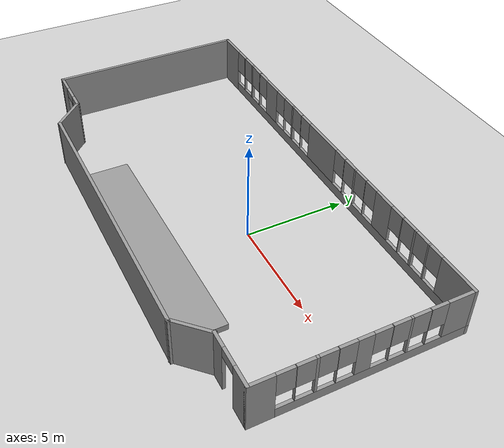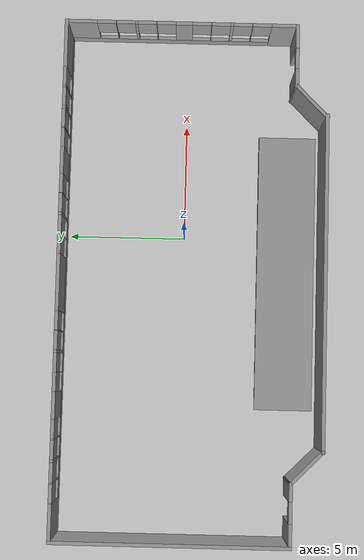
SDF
<sdf version="1.6">
 <world name="default">
  <model name="ground_plane">
   <static>1</static>
   <link name="link">
    <collision name="collision">
     <geometry><plane><normal>0 0 1</normal><size>100 100</size></plane></geometry>
     <surface><friction><ode><mu>100</mu><mu2>50</mu2></ode></friction></surface>
    </collision>
    <visual name="visual">
     <cast_shadows>0</cast_shadows>
     <geometry><plane><normal>0 0 1</normal><size>100 100</size></plane></geometry>
     <material>
      <script><uri>file://media/materials/scripts/gazebo.material</uri><name>Gazebo/Grey</name></script>
     </material>
    </visual>
   </link>
  </model>
  <model name="roomA">
   <pose>-1.9721 -0.37172 0 0 -0 0</pose>
   <link name="Wall_12">
    <pose>-9.625 -4.25539 0 0 -0 0</pose>
    <visual name="Wall_12_Visual_0">
     <pose>-0.851179 0 1.25 0 -0 0</pose>
     <geometry><box><size>1.04764 0.15 2.5</size></box></geometry>
     <material>
      <script><uri>file://media/materials/scripts/gazebo.material</uri><name>Gazebo/Grey</name></script>
      <ambient>1 1 1 1</ambient>
     </material>
     <meta><layer>0</layer></meta>
    </visual>
    <collision name="Wall_12_Collision_0">
     <geometry><box><size>1.04764 0.15 2.5</size></box></geometry>
     <pose>-0.851179 0 1.25 0 -0 0</pose>
    </collision>
    <visual name="Wall_12_Visual_1">
     <pose>0.973821 0 1.25 0 -0 0</pose>
     <geometry><box><size>0.802358 0.15 2.5</size></box></geometry>
     <material>
      <script><uri>file://media/materials/scripts/gazebo.material</uri><name>Gazebo/Grey</name></script>
      <ambient>1 1 1 1</ambient>
     </material>
     <meta><layer>0</layer></meta>
    </visual>
    <collision name="Wall_12_Collision_1">
     <geometry><box><size>0.802358 0.15 2.5</size></box></geometry>
     <pose>0.973821 0 1.25 0 -0 0</pose>
    </collision>
    <visual name="Wall_12_Visual_2">
     <pose>0.122642 0 2.25 0 -0 0</pose>
     <geometry><box><size>0.9 0.15 0.5</size></box></geometry>
     <material>
      <script><uri>file://media/materials/scripts/gazebo.material</uri><name>Gazebo/Grey</name></script>
      <ambient>1 1 1 1</ambient>
     </material>
     <meta><layer>0</layer></meta>
    </visual>
    <collision name="Wall_12_Collision_2">
     <geometry><box><size>0.9 0.15 0.5</size></box></geometry>
     <pose>0.122642 0 2.25 0 -0 0</pose>
    </collision>
   </link>
   <link name="Wall_13">
    <collision name="Wall_13_Collision">
     <geometry><box><size>2 0.15 2.5</size></box></geometry>
     <pose>0 0 1.25 0 -0 0</pose>
    </collision>
    <visual name="Wall_13_Visual">
     <pose>0 0 1.25 0 -0 0</pose>
     <geometry><box><size>2 0.15 2.5</size></box></geometry>
     <material>
      <script><uri>file://media/materials/scripts/gazebo.material</uri><name>Gazebo/Grey</name></script>
      <ambient>1 1 1 1</ambient>
     </material>
     <meta><layer>0</layer></meta>
    </visual>
    <pose>-7.67093 -4.90947 0 0 -0 -0.785398</pose>
   </link>
   <link name="Wall_14">
    <collision name="Wall_14_Collision">
     <geometry><box><size>14.25 0.15 2.5</size></box></geometry>
     <pose>0 0 1.25 0 -0 0</pose>
    </collision>
    <visual name="Wall_14_Visual">
     <pose>0 0 1.25 0 -0 0</pose>
     <geometry><box><size>14.25 0.15 2.5</size></box></geometry>
     <material>
      <script><uri>file://media/materials/scripts/gazebo.material</uri><name>Gazebo/Grey</name></script>
      <ambient>1 1 1 1</ambient>
     </material>
     <meta><layer>0</layer></meta>
    </visual>
    <pose>0.033147 -5.56354 0 0 -0 0</pose>
   </link>
   <link name="Wall_16">
    <pose>9.625 -4.25539 0 0 -0 3.14159</pose>
    <visual name="Wall_16_Visual_0">
     <pose>-0.86254 0 1.25 0 -0 0</pose>
     <geometry><box><size>1.02492 0.15 2.5</size></box></geometry>
     <material>
      <script><uri>file://media/materials/scripts/gazebo.material</uri><name>Gazebo/Grey</name></script>
      <ambient>1 1 1 1</ambient>
     </material>
     <meta><layer>0</layer></meta>
    </visual>
    <collision name="Wall_16_Collision_0">
     <geometry><box><size>1.02492 0.15 2.5</size></box></geometry>
     <pose>-0.86254 0 1.25 0 -0 0</pose>
    </collision>
    <visual name="Wall_16_Visual_1">
     <pose>0.96246 0 1.25 0 -0 0</pose>
     <geometry><box><size>0.825081 0.15 2.5</size></box></geometry>
     <material>
      <script><uri>file://media/materials/scripts/gazebo.material</uri><name>Gazebo/Grey</name></script>
      <ambient>1 1 1 1</ambient>
     </material>
     <meta><layer>0</layer></meta>
    </visual>
    <collision name="Wall_16_Collision_1">
     <geometry><box><size>0.825081 0.15 2.5</size></box></geometry>
     <pose>0.96246 0 1.25 0 -0 0</pose>
    </collision>
    <visual name="Wall_16_Visual_2">
     <pose>0.099919 0 2.25 0 -0 0</pose>
     <geometry><box><size>0.9 0.15 0.5</size></box></geometry>
     <material>
      <script><uri>file://media/materials/scripts/gazebo.material</uri><name>Gazebo/Grey</name></script>
      <ambient>1 1 1 1</ambient>
     </material>
     <meta><layer>0</layer></meta>
    </visual>
    <collision name="Wall_16_Collision_2">
     <geometry><box><size>0.9 0.15 0.5</size></box></geometry>
     <pose>0.099919 0 2.25 0 -0 0</pose>
    </collision>
   </link>
   <link name="Wall_17">
    <collision name="Wall_17_Collision">
     <geometry><box><size>2 0.15 2.5</size></box></geometry>
     <pose>0 0 1.25 0 -0 0</pose>
    </collision>
    <visual name="Wall_17_Visual">
     <pose>0 0 1.25 0 -0 0</pose>
     <geometry><box><size>2 0.15 2.5</size></box></geometry>
     <material>
      <script><uri>file://media/materials/scripts/gazebo.material</uri><name>Gazebo/Grey</name></script>
      <ambient>1 1 1 1</ambient>
     </material>
     <meta><layer>0</layer></meta>
    </visual>
    <pose>7.67093 -4.90947 0 0 -0 -2.35619</pose>
   </link>
   <link name="Wall_4">
    <collision name="Wall_4_Collision">
     <geometry><box><size>10 0.15 2.5</size></box></geometry>
     <pose>0 0 1.25 0 -0 0</pose>
    </collision>
    <visual name="Wall_4_Visual">
     <pose>0 0 1.25 0 -0 0</pose>
     <geometry><box><size>10 0.15 2.5</size></box></geometry>
     <material>
      <script><uri>file://media/materials/scripts/gazebo.material</uri><name>Gazebo/Grey</name></script>
      <ambient>1 1 1 1</ambient>
     </material>
     <meta><layer>0</layer></meta>
    </visual>
    <pose>-10.925 0.669607 0 0 -0 -1.5708</pose>
   </link>
   <link name="Wall_6">
    <pose>10.925 0.669607 0 0 -0 1.5708</pose>
    <visual name="Wall_6_Visual_0">
     <pose>-4.40575 0 1.25 0 -0 0</pose>
     <geometry><box><size>1.1885 0.15 2.5</size></box></geometry>
     <material>
      <script><uri>file://media/materials/scripts/gazebo.material</uri><name>Gazebo/Grey</name></script>
      <ambient>1 1 1 1</ambient>
     </material>
     <meta><layer>0</layer></meta>
    </visual>
    <collision name="Wall_6_Collision_0">
     <geometry><box><size>1.1885 0.15 2.5</size></box></geometry>
     <pose>-4.40575 0 1.25 0 -0 0</pose>
    </collision>
    <visual name="Wall_6_Visual_1">
     <pose>0.594248 0 0.25 0 -0 0</pose>
     <geometry><box><size>8.8115 0.15 0.5</size></box></geometry>
     <material>
      <script><uri>file://media/materials/scripts/gazebo.material</uri><name>Gazebo/Grey</name></script>
      <ambient>1 1 1 1</ambient>
     </material>
     <meta><layer>0</layer></meta>
    </visual>
    <collision name="Wall_6_Collision_1">
     <geometry><box><size>8.8115 0.15 0.5</size></box></geometry>
     <pose>0.594248 0 0.25 0 -0 0</pose>
    </collision>
    <visual name="Wall_6_Visual_2">
     <pose>-2.99918 0 1.5 0 -0 0</pose>
     <geometry><box><size>0.024656 0.15 2</size></box></geometry>
     <material>
      <script><uri>file://media/materials/scripts/gazebo.material</uri><name>Gazebo/Grey</name></script>
      <ambient>1 1 1 1</ambient>
     </material>
     <meta><layer>0</layer></meta>
    </visual>
    <collision name="Wall_6_Collision_2">
     <geometry><box><size>0.024656 0.15 2</size></box></geometry>
     <pose>-2.99918 0 1.5 0 -0 0</pose>
    </collision>
    <visual name="Wall_6_Visual_3">
     <pose>-2.12424 0 1.5 0 -0 0</pose>
     <geometry><box><size>0.125224 0.15 2</size></box></geometry>
     <material>
      <script><uri>file://media/materials/scripts/gazebo.material</uri><name>Gazebo/Grey</name></script>
      <ambient>1 1 1 1</ambient>
     </material>
     <meta><layer>0</layer></meta>
    </visual>
    <collision name="Wall_6_Collision_3">
     <geometry><box><size>0.125224 0.15 2</size></box></geometry>
     <pose>-2.12424 0 1.5 0 -0 0</pose>
    </collision>
    <visual name="Wall_6_Visual_4">
     <pose>-1.2493 0 1.5 0 -0 0</pose>
     <geometry><box><size>0.024656 0.15 2</size></box></geometry>
     <material>
      <script><uri>file://media/materials/scripts/gazebo.material</uri><name>Gazebo/Grey</name></script>
      <ambient>1 1 1 1</ambient>
     </material>
     <meta><layer>0</layer></meta>
    </visual>
    <collision name="Wall_6_Collision_4">
     <geometry><box><size>0.024656 0.15 2</size></box></geometry>
     <pose>-1.2493 0 1.5 0 -0 0</pose>
    </collision>
    <visual name="Wall_6_Visual_5">
     <pose>-0.082708 0 1.5 0 -0 0</pose>
     <geometry><box><size>0.708518 0.15 2</size></box></geometry>
     <material>
      <script><uri>file://media/materials/scripts/gazebo.material</uri><name>Gazebo/Grey</name></script>
      <ambient>1 1 1 1</ambient>
     </material>
     <meta><layer>0</layer></meta>
    </visual>
    <collision name="Wall_6_Collision_5">
     <geometry><box><size>0.708518 0.15 2</size></box></geometry>
     <pose>-0.082708 0 1.5 0 -0 0</pose>
    </collision>
    <visual name="Wall_6_Visual_6">
     <pose>1.08388 0 1.5 0 -0 0</pose>
     <geometry><box><size>0.024656 0.15 2</size></box></geometry>
     <material>
      <script><uri>file://media/materials/scripts/gazebo.material</uri><name>Gazebo/Grey</name></script>
      <ambient>1 1 1 1</ambient>
     </material>
     <meta><layer>0</layer></meta>
    </visual>
    <collision name="Wall_6_Collision_6">
     <geometry><box><size>0.024656 0.15 2</size></box></geometry>
     <pose>1.08388 0 1.5 0 -0 0</pose>
    </collision>
    <visual name="Wall_6_Visual_7">
     <pose>1.94876 0 1.5 0 -0 0</pose>
     <geometry><box><size>0.105111 0.15 2</size></box></geometry>
     <material>
      <script><uri>file://media/materials/scripts/gazebo.material</uri><name>Gazebo/Grey</name></script>
      <ambient>1 1 1 1</ambient>
     </material>
     <meta><layer>0</layer></meta>
    </visual>
    <collision name="Wall_6_Collision_7">
     <geometry><box><size>0.105111 0.15 2</size></box></geometry>
     <pose>1.94876 0 1.5 0 -0 0</pose>
    </collision>
    <visual name="Wall_6_Visual_8">
     <pose>2.81365 0 1.5 0 -0 0</pose>
     <geometry><box><size>0.024656 0.15 2</size></box></geometry>
     <material>
      <script><uri>file://media/materials/scripts/gazebo.material</uri><name>Gazebo/Grey</name></script>
      <ambient>1 1 1 1</ambient>
     </material>
     <meta><layer>0</layer></meta>
    </visual>
    <collision name="Wall_6_Collision_8">
     <geometry><box><size>0.024656 0.15 2</size></box></geometry>
     <pose>2.81365 0 1.5 0 -0 0</pose>
    </collision>
    <visual name="Wall_6_Visual_9">
     <pose>4.31299 0 1.5 0 -0 0</pose>
     <geometry><box><size>1.37403 0.15 2</size></box></geometry>
     <material>
      <script><uri>file://media/materials/scripts/gazebo.material</uri><name>Gazebo/Grey</name></script>
      <ambient>1 1 1 1</ambient>
     </material>
     <meta><layer>0</layer></meta>
    </visual>
    <collision name="Wall_6_Collision_9">
     <geometry><box><size>1.37403 0.15 2</size></box></geometry>
     <pose>4.31299 0 1.5 0 -0 0</pose>
    </collision>
    <visual name="Wall_6_Visual_10">
     <pose>-3.4115 0 1.9 0 -0 0</pose>
     <geometry><box><size>0.8 0.15 1.2</size></box></geometry>
     <material>
      <script><uri>file://media/materials/scripts/gazebo.material</uri><name>Gazebo/Grey</name></script>
      <ambient>1 1 1 1</ambient>
     </material>
     <meta><layer>0</layer></meta>
    </visual>
    <collision name="Wall_6_Collision_10">
     <geometry><box><size>0.8 0.15 1.2</size></box></geometry>
     <pose>-3.4115 0 1.9 0 -0 0</pose>
    </collision>
    <visual name="Wall_6_Visual_11">
     <pose>-2.58685 0 1.9 0 -0 0</pose>
     <geometry><box><size>0.8 0.15 1.2</size></box></geometry>
     <material>
      <script><uri>file://media/materials/scripts/gazebo.material</uri><name>Gazebo/Grey</name></script>
      <ambient>1 1 1 1</ambient>
     </material>
     <meta><layer>0</layer></meta>
    </visual>
    <collision name="Wall_6_Collision_11">
     <geometry><box><size>0.8 0.15 1.2</size></box></geometry>
     <pose>-2.58685 0 1.9 0 -0 0</pose>
    </collision>
    <visual name="Wall_6_Visual_12">
     <pose>-1.66162 0 1.9 0 -0 0</pose>
     <geometry><box><size>0.8 0.15 1.2</size></box></geometry>
     <material>
      <script><uri>file://media/materials/scripts/gazebo.material</uri><name>Gazebo/Grey</name></script>
      <ambient>1 1 1 1</ambient>
     </material>
     <meta><layer>0</layer></meta>
    </visual>
    <collision name="Wall_6_Collision_12">
     <geometry><box><size>0.8 0.15 1.2</size></box></geometry>
     <pose>-1.66162 0 1.9 0 -0 0</pose>
    </collision>
    <visual name="Wall_6_Visual_13">
     <pose>-0.836967 0 1.9 0 -0 0</pose>
     <geometry><box><size>0.8 0.15 1.2</size></box></geometry>
     <material>
      <script><uri>file://media/materials/scripts/gazebo.material</uri><name>Gazebo/Grey</name></script>
      <ambient>1 1 1 1</ambient>
     </material>
     <meta><layer>0</layer></meta>
    </visual>
    <collision name="Wall_6_Collision_13">
     <geometry><box><size>0.8 0.15 1.2</size></box></geometry>
     <pose>-0.836967 0 1.9 0 -0 0</pose>
    </collision>
    <visual name="Wall_6_Visual_14">
     <pose>0.671551 0 1.9 0 -0 0</pose>
     <geometry><box><size>0.8 0.15 1.2</size></box></geometry>
     <material>
      <script><uri>file://media/materials/scripts/gazebo.material</uri><name>Gazebo/Grey</name></script>
      <ambient>1 1 1 1</ambient>
     </material>
     <meta><layer>0</layer></meta>
    </visual>
    <collision name="Wall_6_Collision_14">
     <geometry><box><size>0.8 0.15 1.2</size></box></geometry>
     <pose>0.671551 0 1.9 0 -0 0</pose>
    </collision>
    <visual name="Wall_6_Visual_15">
     <pose>1.49621 0 1.9 0 -0 0</pose>
     <geometry><box><size>0.8 0.15 1.2</size></box></geometry>
     <material>
      <script><uri>file://media/materials/scripts/gazebo.material</uri><name>Gazebo/Grey</name></script>
      <ambient>1 1 1 1</ambient>
     </material>
     <meta><layer>0</layer></meta>
    </visual>
    <collision name="Wall_6_Collision_15">
     <geometry><box><size>0.8 0.15 1.2</size></box></geometry>
     <pose>1.49621 0 1.9 0 -0 0</pose>
    </collision>
    <visual name="Wall_6_Visual_16">
     <pose>2.40132 0 1.9 0 -0 0</pose>
     <geometry><box><size>0.8 0.15 1.2</size></box></geometry>
     <material>
      <script><uri>file://media/materials/scripts/gazebo.material</uri><name>Gazebo/Grey</name></script>
      <ambient>1 1 1 1</ambient>
     </material>
     <meta><layer>0</layer></meta>
    </visual>
    <collision name="Wall_6_Collision_16">
     <geometry><box><size>0.8 0.15 1.2</size></box></geometry>
     <pose>2.40132 0 1.9 0 -0 0</pose>
    </collision>
    <visual name="Wall_6_Visual_17">
     <pose>3.22598 0 1.9 0 -0 0</pose>
     <geometry><box><size>0.8 0.15 1.2</size></box></geometry>
     <material>
      <script><uri>file://media/materials/scripts/gazebo.material</uri><name>Gazebo/Grey</name></script>
      <ambient>1 1 1 1</ambient>
     </material>
     <meta><layer>0</layer></meta>
    </visual>
    <collision name="Wall_6_Collision_17">
     <geometry><box><size>0.8 0.15 1.2</size></box></geometry>
     <pose>3.22598 0 1.9 0 -0 0</pose>
    </collision>
   </link>
   <link name="Wall_8">
    <pose>-0 5.59461 0 0 -0 0</pose>
    <visual name="Wall_8_Visual_0">
     <pose>-10.1796 0 1.25 0 -0 0</pose>
     <geometry><box><size>1.64071 0.15 2.5</size></box></geometry>
     <material>
      <script><uri>file://media/materials/scripts/gazebo.material</uri><name>Gazebo/Grey</name></script>
      <ambient>1 1 1 1</ambient>
     </material>
     <meta><layer>0</layer></meta>
    </visual>
    <collision name="Wall_8_Collision_0">
     <geometry><box><size>1.64071 0.15 2.5</size></box></geometry>
     <pose>-10.1796 0 1.25 0 -0 0</pose>
    </collision>
    <visual name="Wall_8_Visual_1">
     <pose>0.820354 0 0.25 0 -0 0</pose>
     <geometry><box><size>20.3593 0.15 0.5</size></box></geometry>
     <material>
      <script><uri>file://media/materials/scripts/gazebo.material</uri><name>Gazebo/Grey</name></script>
      <ambient>1 1 1 1</ambient>
     </material>
     <meta><layer>0</layer></meta>
    </visual>
    <collision name="Wall_8_Collision_1">
     <geometry><box><size>20.3593 0.15 0.5</size></box></geometry>
     <pose>0.820354 0 0.25 0 -0 0</pose>
    </collision>
    <visual name="Wall_8_Visual_2">
     <pose>-8.52685 0 1.5 0 -0 0</pose>
     <geometry><box><size>0.064883 0.15 2</size></box></geometry>
     <material>
      <script><uri>file://media/materials/scripts/gazebo.material</uri><name>Gazebo/Grey</name></script>
      <ambient>1 1 1 1</ambient>
     </material>
     <meta><layer>0</layer></meta>
    </visual>
    <collision name="Wall_8_Collision_2">
     <geometry><box><size>0.064883 0.15 2</size></box></geometry>
     <pose>-8.52685 0 1.5 0 -0 0</pose>
    </collision>
    <visual name="Wall_8_Visual_3">
     <pose>-7.6318 0 1.5 0 -0 0</pose>
     <geometry><box><size>0.125224 0.15 2</size></box></geometry>
     <material>
      <script><uri>file://media/materials/scripts/gazebo.material</uri><name>Gazebo/Grey</name></script>
      <ambient>1 1 1 1</ambient>
     </material>
     <meta><layer>0</layer></meta>
    </visual>
    <collision name="Wall_8_Collision_3">
     <geometry><box><size>0.125224 0.15 2</size></box></geometry>
     <pose>-7.6318 0 1.5 0 -0 0</pose>
    </collision>
    <visual name="Wall_8_Visual_4">
     <pose>-6.7468 0 1.5 0 -0 0</pose>
     <geometry><box><size>0.04477 0.15 2</size></box></geometry>
     <material>
      <script><uri>file://media/materials/scripts/gazebo.material</uri><name>Gazebo/Grey</name></script>
      <ambient>1 1 1 1</ambient>
     </material>
     <meta><layer>0</layer></meta>
    </visual>
    <collision name="Wall_8_Collision_4">
     <geometry><box><size>0.04477 0.15 2</size></box></geometry>
     <pose>-6.7468 0 1.5 0 -0 0</pose>
    </collision>
    <visual name="Wall_8_Visual_5">
     <pose>-5.35896 0 1.5 0 -0 0</pose>
     <geometry><box><size>1.1309 0.15 2</size></box></geometry>
     <material>
      <script><uri>file://media/materials/scripts/gazebo.material</uri><name>Gazebo/Grey</name></script>
      <ambient>1 1 1 1</ambient>
     </material>
     <meta><layer>0</layer></meta>
    </visual>
    <collision name="Wall_8_Collision_5">
     <geometry><box><size>1.1309 0.15 2</size></box></geometry>
     <pose>-5.35896 0 1.5 0 -0 0</pose>
    </collision>
    <visual name="Wall_8_Visual_6">
     <pose>-3.99124 0 1.5 0 -0 0</pose>
     <geometry><box><size>0.004543 0.15 2</size></box></geometry>
     <material>
      <script><uri>file://media/materials/scripts/gazebo.material</uri><name>Gazebo/Grey</name></script>
      <ambient>1 1 1 1</ambient>
     </material>
     <meta><layer>0</layer></meta>
    </visual>
    <collision name="Wall_8_Collision_6">
     <geometry><box><size>0.004543 0.15 2</size></box></geometry>
     <pose>-3.99124 0 1.5 0 -0 0</pose>
    </collision>
    <visual name="Wall_8_Visual_7">
     <pose>-3.12636 0 1.5 0 -0 0</pose>
     <geometry><box><size>0.125224 0.15 2</size></box></geometry>
     <material>
      <script><uri>file://media/materials/scripts/gazebo.material</uri><name>Gazebo/Grey</name></script>
      <ambient>1 1 1 1</ambient>
     </material>
     <meta><layer>0</layer></meta>
    </visual>
    <collision name="Wall_8_Collision_7">
     <geometry><box><size>0.125224 0.15 2</size></box></geometry>
     <pose>-3.12636 0 1.5 0 -0 0</pose>
    </collision>
    <visual name="Wall_8_Visual_8">
     <pose>-2.25142 0 1.5 0 -0 0</pose>
     <geometry><box><size>0.024656 0.15 2</size></box></geometry>
     <material>
      <script><uri>file://media/materials/scripts/gazebo.material</uri><name>Gazebo/Grey</name></script>
      <ambient>1 1 1 1</ambient>
     </material>
     <meta><layer>0</layer></meta>
    </visual>
    <collision name="Wall_8_Collision_8">
     <geometry><box><size>0.024656 0.15 2</size></box></geometry>
     <pose>-2.25142 0 1.5 0 -0 0</pose>
    </collision>
    <visual name="Wall_8_Visual_9">
     <pose>-0.240058 0 1.5 0 -0 0</pose>
     <geometry><box><size>2.39806 0.15 2</size></box></geometry>
     <material>
      <script><uri>file://media/materials/scripts/gazebo.material</uri><name>Gazebo/Grey</name></script>
      <ambient>1 1 1 1</ambient>
     </material>
     <meta><layer>0</layer></meta>
    </visual>
    <collision name="Wall_8_Collision_9">
     <geometry><box><size>2.39806 0.15 2</size></box></geometry>
     <pose>-0.240058 0 1.5 0 -0 0</pose>
    </collision>
    <visual name="Wall_8_Visual_10">
     <pose>1.7713 0 1.5 0 -0 0</pose>
     <geometry><box><size>0.024656 0.15 2</size></box></geometry>
     <material>
      <script><uri>file://media/materials/scripts/gazebo.material</uri><name>Gazebo/Grey</name></script>
      <ambient>1 1 1 1</ambient>
     </material>
     <meta><layer>0</layer></meta>
    </visual>
    <collision name="Wall_8_Collision_10">
     <geometry><box><size>0.024656 0.15 2</size></box></geometry>
     <pose>1.7713 0 1.5 0 -0 0</pose>
    </collision>
    <visual name="Wall_8_Visual_11">
     <pose>2.64624 0 1.5 0 -0 0</pose>
     <geometry><box><size>0.125224 0.15 2</size></box></geometry>
     <material>
      <script><uri>file://media/materials/scripts/gazebo.material</uri><name>Gazebo/Grey</name></script>
      <ambient>1 1 1 1</ambient>
     </material>
     <meta><layer>0</layer></meta>
    </visual>
    <collision name="Wall_8_Collision_11">
     <geometry><box><size>0.125224 0.15 2</size></box></geometry>
     <pose>2.64624 0 1.5 0 -0 0</pose>
    </collision>
    <visual name="Wall_8_Visual_12">
     <pose>3.52118 0 1.5 0 -0 0</pose>
     <geometry><box><size>0.024656 0.15 2</size></box></geometry>
     <material>
      <script><uri>file://media/materials/scripts/gazebo.material</uri><name>Gazebo/Grey</name></script>
      <ambient>1 1 1 1</ambient>
     </material>
     <meta><layer>0</layer></meta>
    </visual>
    <collision name="Wall_8_Collision_12">
     <geometry><box><size>0.024656 0.15 2</size></box></geometry>
     <pose>3.52118 0 1.5 0 -0 0</pose>
    </collision>
    <visual name="Wall_8_Visual_13">
     <pose>4.90902 0 1.5 0 -0 0</pose>
     <geometry><box><size>1.15102 0.15 2</size></box></geometry>
     <material>
      <script><uri>file://media/materials/scripts/gazebo.material</uri><name>Gazebo/Grey</name></script>
      <ambient>1 1 1 1</ambient>
     </material>
     <meta><layer>0</layer></meta>
    </visual>
    <collision name="Wall_8_Collision_13">
     <geometry><box><size>1.15102 0.15 2</size></box></geometry>
     <pose>4.90902 0 1.5 0 -0 0</pose>
    </collision>
    <visual name="Wall_8_Visual_14">
     <pose>6.30691 0 1.5 0 -0 0</pose>
     <geometry><box><size>0.04477 0.15 2</size></box></geometry>
     <material>
      <script><uri>file://media/materials/scripts/gazebo.material</uri><name>Gazebo/Grey</name></script>
      <ambient>1 1 1 1</ambient>
     </material>
     <meta><layer>0</layer></meta>
    </visual>
    <collision name="Wall_8_Collision_14">
     <geometry><box><size>0.04477 0.15 2</size></box></geometry>
     <pose>6.30691 0 1.5 0 -0 0</pose>
    </collision>
    <visual name="Wall_8_Visual_15">
     <pose>7.19191 0 1.5 0 -0 0</pose>
     <geometry><box><size>0.125224 0.15 2</size></box></geometry>
     <material>
      <script><uri>file://media/materials/scripts/gazebo.material</uri><name>Gazebo/Grey</name></script>
      <ambient>1 1 1 1</ambient>
     </material>
     <meta><layer>0</layer></meta>
    </visual>
    <collision name="Wall_8_Collision_15">
     <geometry><box><size>0.125224 0.15 2</size></box></geometry>
     <pose>7.19191 0 1.5 0 -0 0</pose>
    </collision>
    <visual name="Wall_8_Visual_16">
     <pose>8.09702 0 1.5 0 -0 0</pose>
     <geometry><box><size>0.084997 0.15 2</size></box></geometry>
     <material>
      <script><uri>file://media/materials/scripts/gazebo.material</uri><name>Gazebo/Grey</name></script>
      <ambient>1 1 1 1</ambient>
     </material>
     <meta><layer>0</layer></meta>
    </visual>
    <collision name="Wall_8_Collision_16">
     <geometry><box><size>0.084997 0.15 2</size></box></geometry>
     <pose>8.09702 0 1.5 0 -0 0</pose>
    </collision>
    <visual name="Wall_8_Visual_17">
     <pose>9.96976 0 1.5 0 -0 0</pose>
     <geometry><box><size>2.06048 0.15 2</size></box></geometry>
     <material>
      <script><uri>file://media/materials/scripts/gazebo.material</uri><name>Gazebo/Grey</name></script>
      <ambient>1 1 1 1</ambient>
     </material>
     <meta><layer>0</layer></meta>
    </visual>
    <collision name="Wall_8_Collision_17">
     <geometry><box><size>2.06048 0.15 2</size></box></geometry>
     <pose>9.96976 0 1.5 0 -0 0</pose>
    </collision>
    <visual name="Wall_8_Visual_18">
     <pose>-8.95929 0 1.9 0 -0 0</pose>
     <geometry><box><size>0.8 0.15 1.2</size></box></geometry>
     <material>
      <script><uri>file://media/materials/scripts/gazebo.material</uri><name>Gazebo/Grey</name></script>
      <ambient>1 1 1 1</ambient>
     </material>
     <meta><layer>0</layer></meta>
    </visual>
    <collision name="Wall_8_Collision_18">
     <geometry><box><size>0.8 0.15 1.2</size></box></geometry>
     <pose>-8.95929 0 1.9 0 -0 0</pose>
    </collision>
    <visual name="Wall_8_Visual_19">
     <pose>-8.09441 0 1.9 0 -0 0</pose>
     <geometry><box><size>0.8 0.15 1.2</size></box></geometry>
     <material>
      <script><uri>file://media/materials/scripts/gazebo.material</uri><name>Gazebo/Grey</name></script>
      <ambient>1 1 1 1</ambient>
     </material>
     <meta><layer>0</layer></meta>
    </visual>
    <collision name="Wall_8_Collision_19">
     <geometry><box><size>0.8 0.15 1.2</size></box></geometry>
     <pose>-8.09441 0 1.9 0 -0 0</pose>
    </collision>
    <visual name="Wall_8_Visual_20">
     <pose>-7.16918 0 1.9 0 -0 0</pose>
     <geometry><box><size>0.8 0.15 1.2</size></box></geometry>
     <material>
      <script><uri>file://media/materials/scripts/gazebo.material</uri><name>Gazebo/Grey</name></script>
      <ambient>1 1 1 1</ambient>
     </material>
     <meta><layer>0</layer></meta>
    </visual>
    <collision name="Wall_8_Collision_20">
     <geometry><box><size>0.8 0.15 1.2</size></box></geometry>
     <pose>-7.16918 0 1.9 0 -0 0</pose>
    </collision>
    <visual name="Wall_8_Visual_21">
     <pose>-6.32441 0 1.9 0 -0 0</pose>
     <geometry><box><size>0.8 0.15 1.2</size></box></geometry>
     <material>
      <script><uri>file://media/materials/scripts/gazebo.material</uri><name>Gazebo/Grey</name></script>
      <ambient>1 1 1 1</ambient>
     </material>
     <meta><layer>0</layer></meta>
    </visual>
    <collision name="Wall_8_Collision_21">
     <geometry><box><size>0.8 0.15 1.2</size></box></geometry>
     <pose>-6.32441 0 1.9 0 -0 0</pose>
    </collision>
    <visual name="Wall_8_Visual_22">
     <pose>-4.39351 0 1.9 0 -0 0</pose>
     <geometry><box><size>0.8 0.15 1.2</size></box></geometry>
     <material>
      <script><uri>file://media/materials/scripts/gazebo.material</uri><name>Gazebo/Grey</name></script>
      <ambient>1 1 1 1</ambient>
     </material>
     <meta><layer>0</layer></meta>
    </visual>
    <collision name="Wall_8_Collision_22">
     <geometry><box><size>0.8 0.15 1.2</size></box></geometry>
     <pose>-4.39351 0 1.9 0 -0 0</pose>
    </collision>
    <visual name="Wall_8_Visual_23">
     <pose>-3.58897 0 1.9 0 -0 0</pose>
     <geometry><box><size>0.8 0.15 1.2</size></box></geometry>
     <material>
      <script><uri>file://media/materials/scripts/gazebo.material</uri><name>Gazebo/Grey</name></script>
      <ambient>1 1 1 1</ambient>
     </material>
     <meta><layer>0</layer></meta>
    </visual>
    <collision name="Wall_8_Collision_23">
     <geometry><box><size>0.8 0.15 1.2</size></box></geometry>
     <pose>-3.58897 0 1.9 0 -0 0</pose>
    </collision>
    <visual name="Wall_8_Visual_24">
     <pose>-2.66374 0 1.9 0 -0 0</pose>
     <geometry><box><size>0.8 0.15 1.2</size></box></geometry>
     <material>
      <script><uri>file://media/materials/scripts/gazebo.material</uri><name>Gazebo/Grey</name></script>
      <ambient>1 1 1 1</ambient>
     </material>
     <meta><layer>0</layer></meta>
    </visual>
    <collision name="Wall_8_Collision_24">
     <geometry><box><size>0.8 0.15 1.2</size></box></geometry>
     <pose>-2.66374 0 1.9 0 -0 0</pose>
    </collision>
    <visual name="Wall_8_Visual_25">
     <pose>-1.83909 0 1.9 0 -0 0</pose>
     <geometry><box><size>0.8 0.15 1.2</size></box></geometry>
     <material>
      <script><uri>file://media/materials/scripts/gazebo.material</uri><name>Gazebo/Grey</name></script>
      <ambient>1 1 1 1</ambient>
     </material>
     <meta><layer>0</layer></meta>
    </visual>
    <collision name="Wall_8_Collision_25">
     <geometry><box><size>0.8 0.15 1.2</size></box></geometry>
     <pose>-1.83909 0 1.9 0 -0 0</pose>
    </collision>
    <visual name="Wall_8_Visual_26">
     <pose>1.35897 0 1.9 0 -0 0</pose>
     <geometry><box><size>0.8 0.15 1.2</size></box></geometry>
     <material>
      <script><uri>file://media/materials/scripts/gazebo.material</uri><name>Gazebo/Grey</name></script>
      <ambient>1 1 1 1</ambient>
     </material>
     <meta><layer>0</layer></meta>
    </visual>
    <collision name="Wall_8_Collision_26">
     <geometry><box><size>0.8 0.15 1.2</size></box></geometry>
     <pose>1.35897 0 1.9 0 -0 0</pose>
    </collision>
    <visual name="Wall_8_Visual_27">
     <pose>2.18363 0 1.9 0 -0 0</pose>
     <geometry><box><size>0.8 0.15 1.2</size></box></geometry>
     <material>
      <script><uri>file://media/materials/scripts/gazebo.material</uri><name>Gazebo/Grey</name></script>
      <ambient>1 1 1 1</ambient>
     </material>
     <meta><layer>0</layer></meta>
    </visual>
    <collision name="Wall_8_Collision_27">
     <geometry><box><size>0.8 0.15 1.2</size></box></geometry>
     <pose>2.18363 0 1.9 0 -0 0</pose>
    </collision>
    <visual name="Wall_8_Visual_28">
     <pose>3.10885 0 1.9 0 -0 0</pose>
     <geometry><box><size>0.8 0.15 1.2</size></box></geometry>
     <material>
      <script><uri>file://media/materials/scripts/gazebo.material</uri><name>Gazebo/Grey</name></script>
      <ambient>1 1 1 1</ambient>
     </material>
     <meta><layer>0</layer></meta>
    </visual>
    <collision name="Wall_8_Collision_28">
     <geometry><box><size>0.8 0.15 1.2</size></box></geometry>
     <pose>3.10885 0 1.9 0 -0 0</pose>
    </collision>
    <visual name="Wall_8_Visual_29">
     <pose>3.93351 0 1.9 0 -0 0</pose>
     <geometry><box><size>0.8 0.15 1.2</size></box></geometry>
     <material>
      <script><uri>file://media/materials/scripts/gazebo.material</uri><name>Gazebo/Grey</name></script>
      <ambient>1 1 1 1</ambient>
     </material>
     <meta><layer>0</layer></meta>
    </visual>
    <collision name="Wall_8_Collision_29">
     <geometry><box><size>0.8 0.15 1.2</size></box></geometry>
     <pose>3.93351 0 1.9 0 -0 0</pose>
    </collision>
    <visual name="Wall_8_Visual_30">
     <pose>5.88452 0 1.9 0 -0 0</pose>
     <geometry><box><size>0.8 0.15 1.2</size></box></geometry>
     <material>
      <script><uri>file://media/materials/scripts/gazebo.material</uri><name>Gazebo/Grey</name></script>
      <ambient>1 1 1 1</ambient>
     </material>
     <meta><layer>0</layer></meta>
    </visual>
    <collision name="Wall_8_Collision_30">
     <geometry><box><size>0.8 0.15 1.2</size></box></geometry>
     <pose>5.88452 0 1.9 0 -0 0</pose>
    </collision>
    <visual name="Wall_8_Visual_31">
     <pose>6.72929 0 1.9 0 -0 0</pose>
     <geometry><box><size>0.8 0.15 1.2</size></box></geometry>
     <material>
      <script><uri>file://media/materials/scripts/gazebo.material</uri><name>Gazebo/Grey</name></script>
      <ambient>1 1 1 1</ambient>
     </material>
     <meta><layer>0</layer></meta>
    </visual>
    <collision name="Wall_8_Collision_31">
     <geometry><box><size>0.8 0.15 1.2</size></box></geometry>
     <pose>6.72929 0 1.9 0 -0 0</pose>
    </collision>
    <visual name="Wall_8_Visual_32">
     <pose>7.65452 0 1.9 0 -0 0</pose>
     <geometry><box><size>0.8 0.15 1.2</size></box></geometry>
     <material>
      <script><uri>file://media/materials/scripts/gazebo.material</uri><name>Gazebo/Grey</name></script>
      <ambient>1 1 1 1</ambient>
     </material>
     <meta><layer>0</layer></meta>
    </visual>
    <collision name="Wall_8_Collision_32">
     <geometry><box><size>0.8 0.15 1.2</size></box></geometry>
     <pose>7.65452 0 1.9 0 -0 0</pose>
    </collision>
    <visual name="Wall_8_Visual_33">
     <pose>8.53952 0 1.9 0 -0 0</pose>
     <geometry><box><size>0.8 0.15 1.2</size></box></geometry>
     <material>
      <script><uri>file://media/materials/scripts/gazebo.material</uri><name>Gazebo/Grey</name></script>
      <ambient>1 1 1 1</ambient>
     </material>
     <meta><layer>0</layer></meta>
    </visual>
    <collision name="Wall_8_Collision_33">
     <geometry><box><size>0.8 0.15 1.2</size></box></geometry>
     <pose>8.53952 0 1.9 0 -0 0</pose>
    </collision>
   </link>
   <static>1</static>
  </model>
  <model name="sidewalk">
   <link name="link">
    <inertial>
     <mass>1</mass>
     <inertia>
      <ixx>0.166667</ixx>
      <ixy>0</ixy>
      <ixz>0</ixz>
      <iyy>0.166667</iyy>
      <iyz>0</iyz>
      <izz>0.166667</izz>
     </inertia>
    </inertial>
    <pose>-0.009837 -0 0.566907 0 -0 0</pose>
    <visual name="visual">
     <geometry><box><size>12 2.5 0.3</size></box></geometry>
     <material>
      <script><name>Gazebo/Grey</name><uri>file://media/materials/scripts/gazebo.material</uri></script>
      <shader type="vertex"><normal_map>__default__</normal_map></shader>
      <ambient>0.3 0.3 0.3 1</ambient>
      <diffuse>0.7 0.7 0.7 1</diffuse>
      <specular>0.01 0.01 0.01 1</specular>
      <emissive>0 0 0 1</emissive>
     </material>
    </visual>
    <collision name="collision">
     <geometry><box><size>12 2.5 0.3</size></box></geometry>
     <surface>
      <friction>
       <ode><mu>1</mu><mu2>1</mu2><fdir1>0 0 0</fdir1><slip1>0</slip1><slip2>0</slip2></ode>
       <torsional>
        <coefficient>1</coefficient>
        <patch_radius>0</patch_radius>
        <surface_radius>0</surface_radius>
        <use_patch_radius>1</use_patch_radius>
        <ode><slip>0</slip></ode>
       </torsional>
      </friction>
      <bounce><restitution_coefficient>0</restitution_coefficient><threshold>1e+06</threshold></bounce>
      <contact>
       <collide_without_contact>0</collide_without_contact>
       <collide_without_contact_bitmask>1</collide_without_contact_bitmask>
       <collide_bitmask>1</collide_bitmask>
       <ode>
        <soft_cfm>0</soft_cfm>
        <soft_erp>0.2</soft_erp>
        <kp>1e+13</kp>
        <kd>1</kd>
        <max_vel>0.01</max_vel>
        <min_depth>0</min_depth>
       </ode>
       <bullet>
        <split_impulse>1</split_impulse>
        <split_impulse_penetration_threshold>-0.01</split_impulse_penetration_threshold>
        <soft_cfm>0</soft_cfm>
        <soft_erp>0.2</soft_erp>
        <kp>1e+13</kp>
        <kd>1</kd>
       </bullet>
      </contact>
     </surface>
    </collision>
   </link>
   <static>0</static>
   <pose>-1.3783 -4.45793 -0.520682 0 -0.017351 0</pose>
  </model>
 </world>
</sdf>
